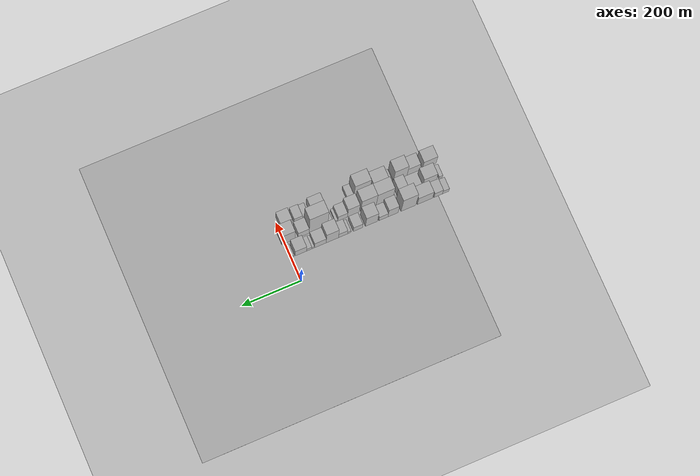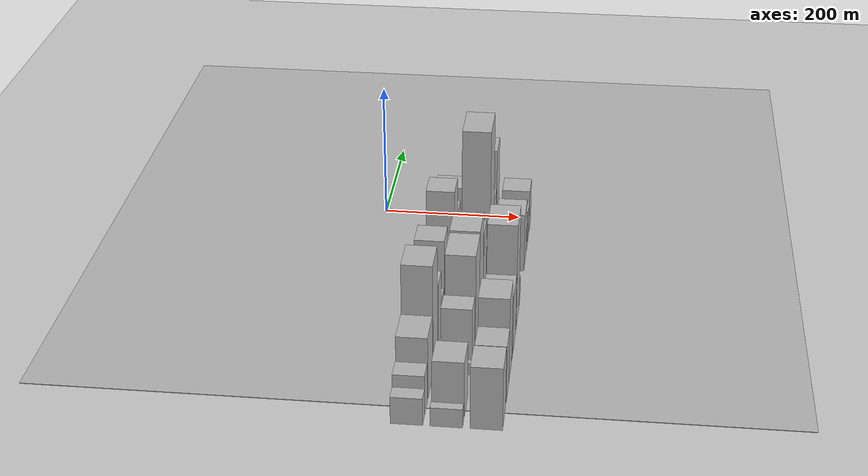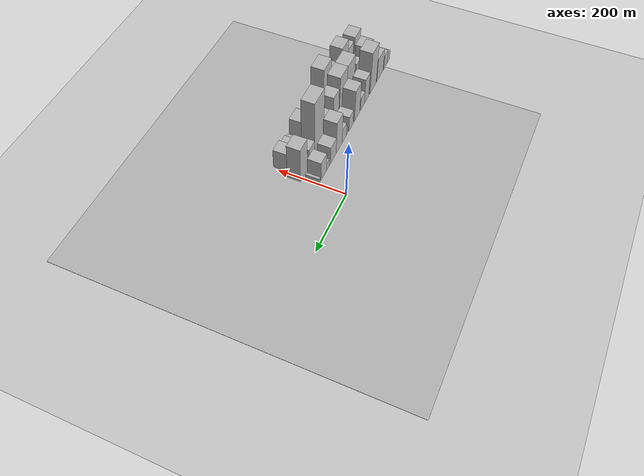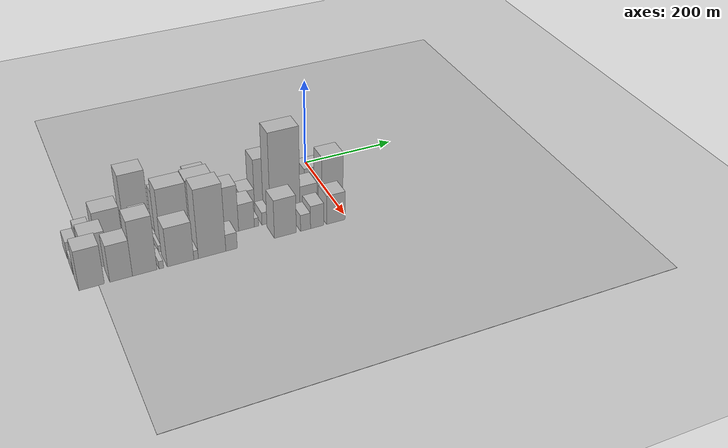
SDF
<sdf version="1.6">
 <world name="default">
  <include><name>ground_plane_1</name><uri>model://HANNAS_ground_plane</uri></include>
  <include>
   <name>ground_plane_2</name>
   <uri>model://HANNAS_ground_plane</uri>
   <pose>100 0 0  0 0 0</pose>
  </include>
  <model name="building_1">
   <static>1</static>
   <pose>100.0000 -525.0843 0 0.000000 0.000000 0.000000</pose>
   <link name="link">
    <pose>0 0 19.50 0 0 0</pose>
    <collision name="collision"><geometry><box><size>40.0000 21.8315 39.0000</size></box></geometry></collision>
    <visual name="visual">
     <cast_shadows>0</cast_shadows>
     <geometry><box><size>40.0000 21.8315 39.0000</size></box></geometry>
     <material>
      <script>
       <uri>model://HANNAS_wall/materials/scripts</uri>
       <uri>model://HANNAS_wall/materials/textures</uri>
       <name>vrc/HANNAS_wall</name>
      </script>
     </material>
    </visual>
   </link>
  </model>
  <model name="building_2">
   <static>1</static>
   <pose>100.0000 -499.6968 0 0.000000 0.000000 0.000000</pose>
   <link name="link">
    <pose>0 0 28.50 0 0 0</pose>
    <collision name="collision"><geometry><box><size>40.0000 28.9434 57.0000</size></box></geometry></collision>
    <visual name="visual">
     <cast_shadows>0</cast_shadows>
     <geometry><box><size>40.0000 28.9434 57.0000</size></box></geometry>
     <material>
      <script>
       <uri>model://HANNAS_wall/materials/scripts</uri>
       <uri>model://HANNAS_wall/materials/textures</uri>
       <name>vrc/HANNAS_wall</name>
      </script>
     </material>
    </visual>
   </link>
  </model>
  <model name="building_3">
   <static>1</static>
   <pose>100.0000 -454.3390 0 0.000000 0.000000 0.000000</pose>
   <link name="link">
    <pose>0 0 45.00 0 0 0</pose>
    <collision name="collision"><geometry><box><size>40.0000 51.7723 90.0000</size></box></geometry></collision>
    <visual name="visual">
     <cast_shadows>0</cast_shadows>
     <geometry><box><size>40.0000 51.7723 90.0000</size></box></geometry>
     <material>
      <script>
       <uri>model://HANNAS_wall/materials/scripts</uri>
       <uri>model://HANNAS_wall/materials/textures</uri>
       <name>vrc/HANNAS_wall</name>
      </script>
     </material>
    </visual>
   </link>
  </model>
  <model name="building_4">
   <static>1</static>
   <pose>100.0000 -398.2001 0 0.000000 0.000000 0.000000</pose>
   <link name="link">
    <pose>0 0 79.50 0 0 0</pose>
    <collision name="collision"><geometry><box><size>40.0000 50.5054 159.0000</size></box></geometry></collision>
    <visual name="visual">
     <cast_shadows>0</cast_shadows>
     <geometry><box><size>40.0000 50.5054 159.0000</size></box></geometry>
     <material>
      <script>
       <uri>model://HANNAS_wall/materials/scripts</uri>
       <uri>model://HANNAS_wall/materials/textures</uri>
       <name>vrc/HANNAS_wall</name>
      </script>
     </material>
    </visual>
   </link>
  </model>
  <model name="building_5">
   <static>1</static>
   <pose>100.0000 -345.5721 0 0.000000 0.000000 0.000000</pose>
   <link name="link">
    <pose>0 0 48.00 0 0 0</pose>
    <collision name="collision"><geometry><box><size>40.0000 34.7506 96.0000</size></box></geometry></collision>
    <visual name="visual">
     <cast_shadows>0</cast_shadows>
     <geometry><box><size>40.0000 34.7506 96.0000</size></box></geometry>
     <material>
      <script>
       <uri>model://HANNAS_wall/materials/scripts</uri>
       <uri>model://HANNAS_wall/materials/textures</uri>
       <name>vrc/HANNAS_wall</name>
      </script>
     </material>
    </visual>
   </link>
  </model>
  <model name="building_6">
   <static>1</static>
   <pose>100.0000 -312.9346 0 0.000000 0.000000 0.000000</pose>
   <link name="link">
    <pose>0 0 25.50 0 0 0</pose>
    <collision name="collision"><geometry><box><size>40.0000 30.5245 51.0000</size></box></geometry></collision>
    <visual name="visual">
     <cast_shadows>0</cast_shadows>
     <geometry><box><size>40.0000 30.5245 51.0000</size></box></geometry>
     <material>
      <script>
       <uri>model://HANNAS_wall/materials/scripts</uri>
       <uri>model://HANNAS_wall/materials/textures</uri>
       <name>vrc/HANNAS_wall</name>
      </script>
     </material>
    </visual>
   </link>
  </model>
  <model name="building_7">
   <static>1</static>
   <pose>100.0000 -272.1538 0 0.000000 0.000000 0.000000</pose>
   <link name="link">
    <pose>0 0 60.00 0 0 0</pose>
    <collision name="collision"><geometry><box><size>40.0000 41.0372 120.0000</size></box></geometry></collision>
    <visual name="visual">
     <cast_shadows>0</cast_shadows>
     <geometry><box><size>40.0000 41.0372 120.0000</size></box></geometry>
     <material>
      <script>
       <uri>model://HANNAS_wall/materials/scripts</uri>
       <uri>model://HANNAS_wall/materials/textures</uri>
       <name>vrc/HANNAS_wall</name>
      </script>
     </material>
    </visual>
   </link>
  </model>
  <model name="building_8">
   <static>1</static>
   <pose>100.0000 -226.0152 0 0.000000 0.000000 0.000000</pose>
   <link name="link">
    <pose>0 0 28.50 0 0 0</pose>
    <collision name="collision"><geometry><box><size>40.0000 31.2399 57.0000</size></box></geometry></collision>
    <visual name="visual">
     <cast_shadows>0</cast_shadows>
     <geometry><box><size>40.0000 31.2399 57.0000</size></box></geometry>
     <material>
      <script>
       <uri>model://HANNAS_wall/materials/scripts</uri>
       <uri>model://HANNAS_wall/materials/textures</uri>
       <name>vrc/HANNAS_wall</name>
      </script>
     </material>
    </visual>
   </link>
  </model>
  <model name="building_9">
   <static>1</static>
   <pose>100.0000 -196.6155 0 0.000000 0.000000 0.000000</pose>
   <link name="link">
    <pose>0 0 13.50 0 0 0</pose>
    <collision name="collision"><geometry><box><size>40.0000 11.5596 27.0000</size></box></geometry></collision>
    <visual name="visual">
     <cast_shadows>0</cast_shadows>
     <geometry><box><size>40.0000 11.5596 27.0000</size></box></geometry>
     <material>
      <script>
       <uri>model://HANNAS_wall/materials/scripts</uri>
       <uri>model://HANNAS_wall/materials/textures</uri>
       <name>vrc/HANNAS_wall</name>
      </script>
     </material>
    </visual>
   </link>
  </model>
  <model name="building_10">
   <static>1</static>
   <pose>100.0000 -175.4859 0 0.000000 0.000000 0.000000</pose>
   <link name="link">
    <pose>0 0 27.00 0 0 0</pose>
    <collision name="collision"><geometry><box><size>40.0000 30.6995 54.0000</size></box></geometry></collision>
    <visual name="visual">
     <cast_shadows>0</cast_shadows>
     <geometry><box><size>40.0000 30.6995 54.0000</size></box></geometry>
     <material>
      <script>
       <uri>model://HANNAS_wall/materials/scripts</uri>
       <uri>model://HANNAS_wall/materials/textures</uri>
       <name>vrc/HANNAS_wall</name>
      </script>
     </material>
    </visual>
   </link>
  </model>
  <model name="building_11">
   <static>1</static>
   <pose>100.0000 -139.2600 0 0.000000 0.000000 0.000000</pose>
   <link name="link">
    <pose>0 0 61.50 0 0 0</pose>
    <collision name="collision"><geometry><box><size>40.0000 41.7524 123.0000</size></box></geometry></collision>
    <visual name="visual">
     <cast_shadows>0</cast_shadows>
     <geometry><box><size>40.0000 41.7524 123.0000</size></box></geometry>
     <material>
      <script>
       <uri>model://HANNAS_wall/materials/scripts</uri>
       <uri>model://HANNAS_wall/materials/textures</uri>
       <name>vrc/HANNAS_wall</name>
      </script>
     </material>
    </visual>
   </link>
  </model>
  <model name="building_12">
   <static>1</static>
   <pose>100.0000 -98.6339 0 0.000000 0.000000 0.000000</pose>
   <link name="link">
    <pose>0 0 33.00 0 0 0</pose>
    <collision name="collision"><geometry><box><size>40.0000 39.4997 66.0000</size></box></geometry></collision>
    <visual name="visual">
     <cast_shadows>0</cast_shadows>
     <geometry><box><size>40.0000 39.4997 66.0000</size></box></geometry>
     <material>
      <script>
       <uri>model://HANNAS_wall/materials/scripts</uri>
       <uri>model://HANNAS_wall/materials/textures</uri>
       <name>vrc/HANNAS_wall</name>
      </script>
     </material>
    </visual>
   </link>
  </model>
  <model name="building_13">
   <static>1</static>
   <pose>100.0000 -74.4184 0 0.000000 0.000000 0.000000</pose>
   <link name="link">
    <pose>0 0 10.50 0 0 0</pose>
    <collision name="collision"><geometry><box><size>40.0000 8.9314 21.0000</size></box></geometry></collision>
    <visual name="visual">
     <cast_shadows>0</cast_shadows>
     <geometry><box><size>40.0000 8.9314 21.0000</size></box></geometry>
     <material>
      <script>
       <uri>model://HANNAS_wall/materials/scripts</uri>
       <uri>model://HANNAS_wall/materials/textures</uri>
       <name>vrc/HANNAS_wall</name>
      </script>
     </material>
    </visual>
   </link>
  </model>
  <model name="building_14">
   <static>1</static>
   <pose>100.0000 -61.1851 0 0.000000 0.000000 0.000000</pose>
   <link name="link">
    <pose>0 0 15.00 0 0 0</pose>
    <collision name="collision"><geometry><box><size>40.0000 17.5353 30.0000</size></box></geometry></collision>
    <visual name="visual">
     <cast_shadows>0</cast_shadows>
     <geometry><box><size>40.0000 17.5353 30.0000</size></box></geometry>
     <material>
      <script>
       <uri>model://HANNAS_wall/materials/scripts</uri>
       <uri>model://HANNAS_wall/materials/textures</uri>
       <name>vrc/HANNAS_wall</name>
      </script>
     </material>
    </visual>
   </link>
  </model>
  <model name="building_15">
   <static>1</static>
   <pose>100.0000 -33.0483 0 0.000000 0.000000 0.000000</pose>
   <link name="link">
    <pose>0 0 36.00 0 0 0</pose>
    <collision name="collision"><geometry><box><size>40.0000 38.7382 72.0000</size></box></geometry></collision>
    <visual name="visual">
     <cast_shadows>0</cast_shadows>
     <geometry><box><size>40.0000 38.7382 72.0000</size></box></geometry>
     <material>
      <script>
       <uri>model://HANNAS_wall/materials/scripts</uri>
       <uri>model://HANNAS_wall/materials/textures</uri>
       <name>vrc/HANNAS_wall</name>
      </script>
     </material>
    </visual>
   </link>
  </model>
  <model name="building_16">
   <static>1</static>
   <pose>100.0000 -5.4757 0 0.000000 0.000000 0.000000</pose>
   <link name="link">
    <pose>0 0 10.50 0 0 0</pose>
    <collision name="collision"><geometry><box><size>40.0000 8.4069 21.0000</size></box></geometry></collision>
    <visual name="visual">
     <cast_shadows>0</cast_shadows>
     <geometry><box><size>40.0000 8.4069 21.0000</size></box></geometry>
     <material>
      <script>
       <uri>model://HANNAS_wall/materials/scripts</uri>
       <uri>model://HANNAS_wall/materials/textures</uri>
       <name>vrc/HANNAS_wall</name>
      </script>
     </material>
    </visual>
   </link>
  </model>
  <model name="building_31">
   <static>1</static>
   <pose>149.0000 -529.6401 0 0.000000 0.000000 0.000000</pose>
   <link name="link">
    <pose>0 0 13.50 0 0 0</pose>
    <collision name="collision"><geometry><box><size>40.0000 12.7197 27.0000</size></box></geometry></collision>
    <visual name="visual">
     <cast_shadows>0</cast_shadows>
     <geometry><box><size>40.0000 12.7197 27.0000</size></box></geometry>
     <material>
      <script>
       <uri>model://HANNAS_wall/materials/scripts</uri>
       <uri>model://HANNAS_wall/materials/textures</uri>
       <name>vrc/HANNAS_wall</name>
      </script>
     </material>
    </visual>
   </link>
  </model>
  <model name="building_32">
   <static>1</static>
   <pose>149.0000 -492.2932 0 0.000000 0.000000 0.000000</pose>
   <link name="link">
    <pose>0 0 40.50 0 0 0</pose>
    <collision name="collision"><geometry><box><size>40.0000 45.9741 81.0000</size></box></geometry></collision>
    <visual name="visual">
     <cast_shadows>0</cast_shadows>
     <geometry><box><size>40.0000 45.9741 81.0000</size></box></geometry>
     <material>
      <script>
       <uri>model://HANNAS_wall/materials/scripts</uri>
       <uri>model://HANNAS_wall/materials/textures</uri>
       <name>vrc/HANNAS_wall</name>
      </script>
     </material>
    </visual>
   </link>
  </model>
  <model name="building_33">
   <static>1</static>
   <pose>149.0000 -418.1673 0 0.000000 0.000000 0.000000</pose>
   <link name="link">
    <pose>0 0 9.00 0 0 0</pose>
    <collision name="collision"><geometry><box><size>40.0000 8.7592 18.0000</size></box></geometry></collision>
    <visual name="visual">
     <cast_shadows>0</cast_shadows>
     <geometry><box><size>40.0000 8.7592 18.0000</size></box></geometry>
     <material>
      <script>
       <uri>model://HANNAS_wall/materials/scripts</uri>
       <uri>model://HANNAS_wall/materials/textures</uri>
       <name>vrc/HANNAS_wall</name>
      </script>
     </material>
    </visual>
   </link>
  </model>
  <model name="building_34">
   <static>1</static>
   <pose>149.0000 -397.6507 0 0.000000 0.000000 0.000000</pose>
   <link name="link">
    <pose>0 0 46.50 0 0 0</pose>
    <collision name="collision"><geometry><box><size>40.0000 32.2739 93.0000</size></box></geometry></collision>
    <visual name="visual">
     <cast_shadows>0</cast_shadows>
     <geometry><box><size>40.0000 32.2739 93.0000</size></box></geometry>
     <material>
      <script>
       <uri>model://HANNAS_wall/materials/scripts</uri>
       <uri>model://HANNAS_wall/materials/textures</uri>
       <name>vrc/HANNAS_wall</name>
      </script>
     </material>
    </visual>
   </link>
  </model>
  <model name="building_35">
   <static>1</static>
   <pose>149.0000 -370.4899 0 0.000000 0.000000 0.000000</pose>
   <link name="link">
    <pose>0 0 7.50 0 0 0</pose>
    <collision name="collision"><geometry><box><size>40.0000 6.0475 15.0000</size></box></geometry></collision>
    <visual name="visual">
     <cast_shadows>0</cast_shadows>
     <geometry><box><size>40.0000 6.0475 15.0000</size></box></geometry>
     <material>
      <script>
       <uri>model://HANNAS_wall/materials/scripts</uri>
       <uri>model://HANNAS_wall/materials/textures</uri>
       <name>vrc/HANNAS_wall</name>
      </script>
     </material>
    </visual>
   </link>
  </model>
  <model name="building_36">
   <static>1</static>
   <pose>149.0000 -338.6855 0 0.000000 0.000000 0.000000</pose>
   <link name="link">
    <pose>0 0 72.00 0 0 0</pose>
    <collision name="collision"><geometry><box><size>40.0000 57.5614 144.0000</size></box></geometry></collision>
    <visual name="visual">
     <cast_shadows>0</cast_shadows>
     <geometry><box><size>40.0000 57.5614 144.0000</size></box></geometry>
     <material>
      <script>
       <uri>model://HANNAS_wall/materials/scripts</uri>
       <uri>model://HANNAS_wall/materials/textures</uri>
       <name>vrc/HANNAS_wall</name>
      </script>
     </material>
    </visual>
   </link>
  </model>
  <model name="building_37">
   <static>1</static>
   <pose>149.0000 -283.4376 0 0.000000 0.000000 0.000000</pose>
   <link name="link">
    <pose>0 0 73.50 0 0 0</pose>
    <collision name="collision"><geometry><box><size>40.0000 52.9343 147.0000</size></box></geometry></collision>
    <visual name="visual">
     <cast_shadows>0</cast_shadows>
     <geometry><box><size>40.0000 52.9343 147.0000</size></box></geometry>
     <material>
      <script>
       <uri>model://HANNAS_wall/materials/scripts</uri>
       <uri>model://HANNAS_wall/materials/textures</uri>
       <name>vrc/HANNAS_wall</name>
      </script>
     </material>
    </visual>
   </link>
  </model>
  <model name="building_38">
   <static>1</static>
   <pose>149.0000 -231.8540 0 0.000000 0.000000 0.000000</pose>
   <link name="link">
    <pose>0 0 55.50 0 0 0</pose>
    <collision name="collision"><geometry><box><size>40.0000 40.2330 111.0000</size></box></geometry></collision>
    <visual name="visual">
     <cast_shadows>0</cast_shadows>
     <geometry><box><size>40.0000 40.2330 111.0000</size></box></geometry>
     <material>
      <script>
       <uri>model://HANNAS_wall/materials/scripts</uri>
       <uri>model://HANNAS_wall/materials/textures</uri>
       <name>vrc/HANNAS_wall</name>
      </script>
     </material>
    </visual>
   </link>
  </model>
  <model name="building_39">
   <static>1</static>
   <pose>149.0000 -195.4384 0 0.000000 0.000000 0.000000</pose>
   <link name="link">
    <pose>0 0 31.50 0 0 0</pose>
    <collision name="collision"><geometry><box><size>40.0000 32.5982 63.0000</size></box></geometry></collision>
    <visual name="visual">
     <cast_shadows>0</cast_shadows>
     <geometry><box><size>40.0000 32.5982 63.0000</size></box></geometry>
     <material>
      <script>
       <uri>model://HANNAS_wall/materials/scripts</uri>
       <uri>model://HANNAS_wall/materials/textures</uri>
       <name>vrc/HANNAS_wall</name>
      </script>
     </material>
    </visual>
   </link>
  </model>
  <model name="building_40">
   <static>1</static>
   <pose>149.0000 -174.6834 0 0.000000 0.000000 0.000000</pose>
   <link name="link">
    <pose>0 0 10.50 0 0 0</pose>
    <collision name="collision"><geometry><box><size>40.0000 8.9119 21.0000</size></box></geometry></collision>
    <visual name="visual">
     <cast_shadows>0</cast_shadows>
     <geometry><box><size>40.0000 8.9119 21.0000</size></box></geometry>
     <material>
      <script>
       <uri>model://HANNAS_wall/materials/scripts</uri>
       <uri>model://HANNAS_wall/materials/textures</uri>
       <name>vrc/HANNAS_wall</name>
      </script>
     </material>
    </visual>
   </link>
  </model>
  <model name="building_41">
   <static>1</static>
   <pose>149.0000 -154.3316 0 0.000000 0.000000 0.000000</pose>
   <link name="link">
    <pose>0 0 15.00 0 0 0</pose>
    <collision name="collision"><geometry><box><size>40.0000 17.7917 30.0000</size></box></geometry></collision>
    <visual name="visual">
     <cast_shadows>0</cast_shadows>
     <geometry><box><size>40.0000 17.7917 30.0000</size></box></geometry>
     <material>
      <script>
       <uri>model://HANNAS_wall/materials/scripts</uri>
       <uri>model://HANNAS_wall/materials/textures</uri>
       <name>vrc/HANNAS_wall</name>
      </script>
     </material>
    </visual>
   </link>
  </model>
  <model name="building_42">
   <static>1</static>
   <pose>149.0000 -113.7942 0 0.000000 0.000000 0.000000</pose>
   <link name="link">
    <pose>0 0 105.00 0 0 0</pose>
    <collision name="collision"><geometry><box><size>40.0000 63.2830 210.0000</size></box></geometry></collision>
    <visual name="visual">
     <cast_shadows>0</cast_shadows>
     <geometry><box><size>40.0000 63.2830 210.0000</size></box></geometry>
     <material>
      <script>
       <uri>model://HANNAS_wall/materials/scripts</uri>
       <uri>model://HANNAS_wall/materials/textures</uri>
       <name>vrc/HANNAS_wall</name>
      </script>
     </material>
    </visual>
   </link>
  </model>
  <model name="building_43">
   <static>1</static>
   <pose>149.0000 -63.5396 0 0.000000 0.000000 0.000000</pose>
   <link name="link">
    <pose>0 0 34.50 0 0 0</pose>
    <collision name="collision"><geometry><box><size>40.0000 37.2262 69.0000</size></box></geometry></collision>
    <visual name="visual">
     <cast_shadows>0</cast_shadows>
     <geometry><box><size>40.0000 37.2262 69.0000</size></box></geometry>
     <material>
      <script>
       <uri>model://HANNAS_wall/materials/scripts</uri>
       <uri>model://HANNAS_wall/materials/textures</uri>
       <name>vrc/HANNAS_wall</name>
      </script>
     </material>
    </visual>
   </link>
  </model>
  <model name="building_44">
   <static>1</static>
   <pose>149.0000 -11.9843 0 0.000000 0.000000 0.000000</pose>
   <link name="link">
    <pose>0 0 63.00 0 0 0</pose>
    <collision name="collision"><geometry><box><size>40.0000 45.8843 126.0000</size></box></geometry></collision>
    <visual name="visual">
     <cast_shadows>0</cast_shadows>
     <geometry><box><size>40.0000 45.8843 126.0000</size></box></geometry>
     <material>
      <script>
       <uri>model://HANNAS_wall/materials/scripts</uri>
       <uri>model://HANNAS_wall/materials/textures</uri>
       <name>vrc/HANNAS_wall</name>
      </script>
     </material>
    </visual>
   </link>
  </model>
  <model name="building_60">
   <static>1</static>
   <pose>198.0000 -512.5850 0 0.000000 0.000000 0.000000</pose>
   <link name="link">
    <pose>0 0 45.00 0 0 0</pose>
    <collision name="collision"><geometry><box><size>40.0000 46.8301 90.0000</size></box></geometry></collision>
    <visual name="visual">
     <cast_shadows>0</cast_shadows>
     <geometry><box><size>40.0000 46.8301 90.0000</size></box></geometry>
     <material>
      <script>
       <uri>model://HANNAS_wall/materials/scripts</uri>
       <uri>model://HANNAS_wall/materials/textures</uri>
       <name>vrc/HANNAS_wall</name>
      </script>
     </material>
    </visual>
   </link>
  </model>
  <model name="building_61">
   <static>1</static>
   <pose>198.0000 -457.9122 0 0.000000 0.000000 0.000000</pose>
   <link name="link">
    <pose>0 0 42.00 0 0 0</pose>
    <collision name="collision"><geometry><box><size>40.0000 42.5155 84.0000</size></box></geometry></collision>
    <visual name="visual">
     <cast_shadows>0</cast_shadows>
     <geometry><box><size>40.0000 42.5155 84.0000</size></box></geometry>
     <material>
      <script>
       <uri>model://HANNAS_wall/materials/scripts</uri>
       <uri>model://HANNAS_wall/materials/textures</uri>
       <name>vrc/HANNAS_wall</name>
      </script>
     </material>
    </visual>
   </link>
  </model>
  <model name="building_62">
   <static>1</static>
   <pose>198.0000 -413.3801 0 0.000000 0.000000 0.000000</pose>
   <link name="link">
    <pose>0 0 63.00 0 0 0</pose>
    <collision name="collision"><geometry><box><size>40.0000 46.5487 126.0000</size></box></geometry></collision>
    <visual name="visual">
     <cast_shadows>0</cast_shadows>
     <geometry><box><size>40.0000 46.5487 126.0000</size></box></geometry>
     <material>
      <script>
       <uri>model://HANNAS_wall/materials/scripts</uri>
       <uri>model://HANNAS_wall/materials/textures</uri>
       <name>vrc/HANNAS_wall</name>
      </script>
     </material>
    </visual>
   </link>
  </model>
  <model name="building_63">
   <static>1</static>
   <pose>198.0000 -381.6772 0 0.000000 0.000000 0.000000</pose>
   <link name="link">
    <pose>0 0 9.00 0 0 0</pose>
    <collision name="collision"><geometry><box><size>40.0000 8.8570 18.0000</size></box></geometry></collision>
    <visual name="visual">
     <cast_shadows>0</cast_shadows>
     <geometry><box><size>40.0000 8.8570 18.0000</size></box></geometry>
     <material>
      <script>
       <uri>model://HANNAS_wall/materials/scripts</uri>
       <uri>model://HANNAS_wall/materials/textures</uri>
       <name>vrc/HANNAS_wall</name>
      </script>
     </material>
    </visual>
   </link>
  </model>
  <model name="building_64">
   <static>1</static>
   <pose>198.0000 -344.4122 0 0.000000 0.000000 0.000000</pose>
   <link name="link">
    <pose>0 0 45.00 0 0 0</pose>
    <collision name="collision"><geometry><box><size>40.0000 51.6730 90.0000</size></box></geometry></collision>
    <visual name="visual">
     <cast_shadows>0</cast_shadows>
     <geometry><box><size>40.0000 51.6730 90.0000</size></box></geometry>
     <material>
      <script>
       <uri>model://HANNAS_wall/materials/scripts</uri>
       <uri>model://HANNAS_wall/materials/textures</uri>
       <name>vrc/HANNAS_wall</name>
      </script>
     </material>
    </visual>
   </link>
  </model>
  <model name="building_65">
   <static>1</static>
   <pose>198.0000 -314.1652 0 0.000000 0.000000 0.000000</pose>
   <link name="link">
    <pose>0 0 10.50 0 0 0</pose>
    <collision name="collision"><geometry><box><size>40.0000 8.8211 21.0000</size></box></geometry></collision>
    <visual name="visual">
     <cast_shadows>0</cast_shadows>
     <geometry><box><size>40.0000 8.8211 21.0000</size></box></geometry>
     <material>
      <script>
       <uri>model://HANNAS_wall/materials/scripts</uri>
       <uri>model://HANNAS_wall/materials/textures</uri>
       <name>vrc/HANNAS_wall</name>
      </script>
     </material>
    </visual>
   </link>
  </model>
  <model name="building_66">
   <static>1</static>
   <pose>198.0000 -282.3831 0 0.000000 0.000000 0.000000</pose>
   <link name="link">
    <pose>0 0 79.50 0 0 0</pose>
    <collision name="collision"><geometry><box><size>40.0000 54.7430 159.0000</size></box></geometry></collision>
    <visual name="visual">
     <cast_shadows>0</cast_shadows>
     <geometry><box><size>40.0000 54.7430 159.0000</size></box></geometry>
     <material>
      <script>
       <uri>model://HANNAS_wall/materials/scripts</uri>
       <uri>model://HANNAS_wall/materials/textures</uri>
       <name>vrc/HANNAS_wall</name>
      </script>
     </material>
    </visual>
   </link>
  </model>
  <model name="building_67">
   <static>1</static>
   <pose>198.0000 -243.4870 0 0.000000 0.000000 0.000000</pose>
   <link name="link">
    <pose>0 0 19.50 0 0 0</pose>
    <collision name="collision"><geometry><box><size>40.0000 23.0492 39.0000</size></box></geometry></collision>
    <visual name="visual">
     <cast_shadows>0</cast_shadows>
     <geometry><box><size>40.0000 23.0492 39.0000</size></box></geometry>
     <material>
      <script>
       <uri>model://HANNAS_wall/materials/scripts</uri>
       <uri>model://HANNAS_wall/materials/textures</uri>
       <name>vrc/HANNAS_wall</name>
      </script>
     </material>
    </visual>
   </link>
  </model>
  <model name="building_68">
   <static>1</static>
   <pose>198.0000 -133.2604 0 0.000000 0.000000 0.000000</pose>
   <link name="link">
    <pose>0 0 45.00 0 0 0</pose>
    <collision name="collision"><geometry><box><size>40.0000 45.8013 90.0000</size></box></geometry></collision>
    <visual name="visual">
     <cast_shadows>0</cast_shadows>
     <geometry><box><size>40.0000 45.8013 90.0000</size></box></geometry>
     <material>
      <script>
       <uri>model://HANNAS_wall/materials/scripts</uri>
       <uri>model://HANNAS_wall/materials/textures</uri>
       <name>vrc/HANNAS_wall</name>
      </script>
     </material>
    </visual>
   </link>
  </model>
  <model name="building_69">
   <static>1</static>
   <pose>198.0000 -90.8490 0 0.000000 0.000000 0.000000</pose>
   <link name="link">
    <pose>0 0 19.50 0 0 0</pose>
    <collision name="collision"><geometry><box><size>40.0000 21.0214 39.0000</size></box></geometry></collision>
    <visual name="visual">
     <cast_shadows>0</cast_shadows>
     <geometry><box><size>40.0000 21.0214 39.0000</size></box></geometry>
     <material>
      <script>
       <uri>model://HANNAS_wall/materials/scripts</uri>
       <uri>model://HANNAS_wall/materials/textures</uri>
       <name>vrc/HANNAS_wall</name>
      </script>
     </material>
    </visual>
   </link>
  </model>
  <model name="building_70">
   <static>1</static>
   <pose>198.0000 -66.1796 0 0.000000 0.000000 0.000000</pose>
   <link name="link">
    <pose>0 0 27.00 0 0 0</pose>
    <collision name="collision"><geometry><box><size>40.0000 28.3174 54.0000</size></box></geometry></collision>
    <visual name="visual">
     <cast_shadows>0</cast_shadows>
     <geometry><box><size>40.0000 28.3174 54.0000</size></box></geometry>
     <material>
      <script>
       <uri>model://HANNAS_wall/materials/scripts</uri>
       <uri>model://HANNAS_wall/materials/textures</uri>
       <name>vrc/HANNAS_wall</name>
      </script>
     </material>
    </visual>
   </link>
  </model>
  <model name="building_71">
   <static>1</static>
   <pose>198.0000 -26.1277 0 0.000000 0.000000 0.000000</pose>
   <link name="link">
    <pose>0 0 34.50 0 0 0</pose>
    <collision name="collision"><geometry><box><size>40.0000 39.7863 69.0000</size></box></geometry></collision>
    <visual name="visual">
     <cast_shadows>0</cast_shadows>
     <geometry><box><size>40.0000 39.7863 69.0000</size></box></geometry>
     <material>
      <script>
       <uri>model://HANNAS_wall/materials/scripts</uri>
       <uri>model://HANNAS_wall/materials/textures</uri>
       <name>vrc/HANNAS_wall</name>
      </script>
     </material>
    </visual>
   </link>
  </model>
 </world>
</sdf>
